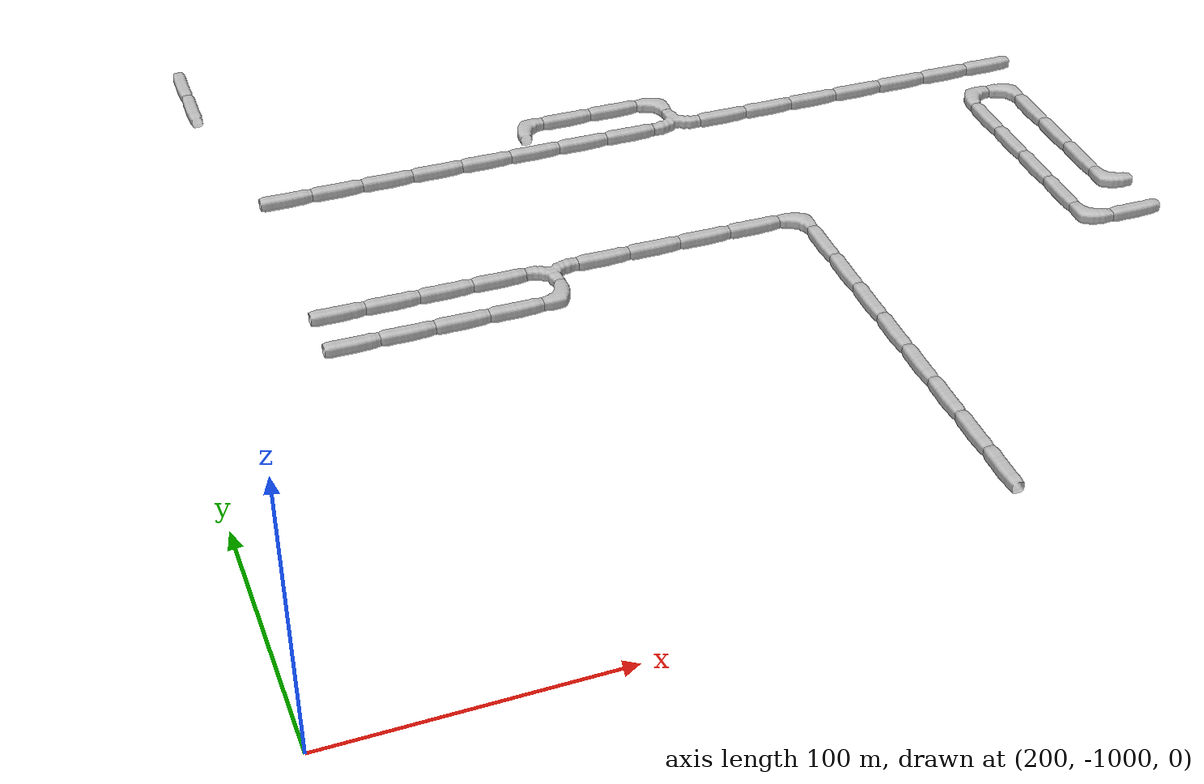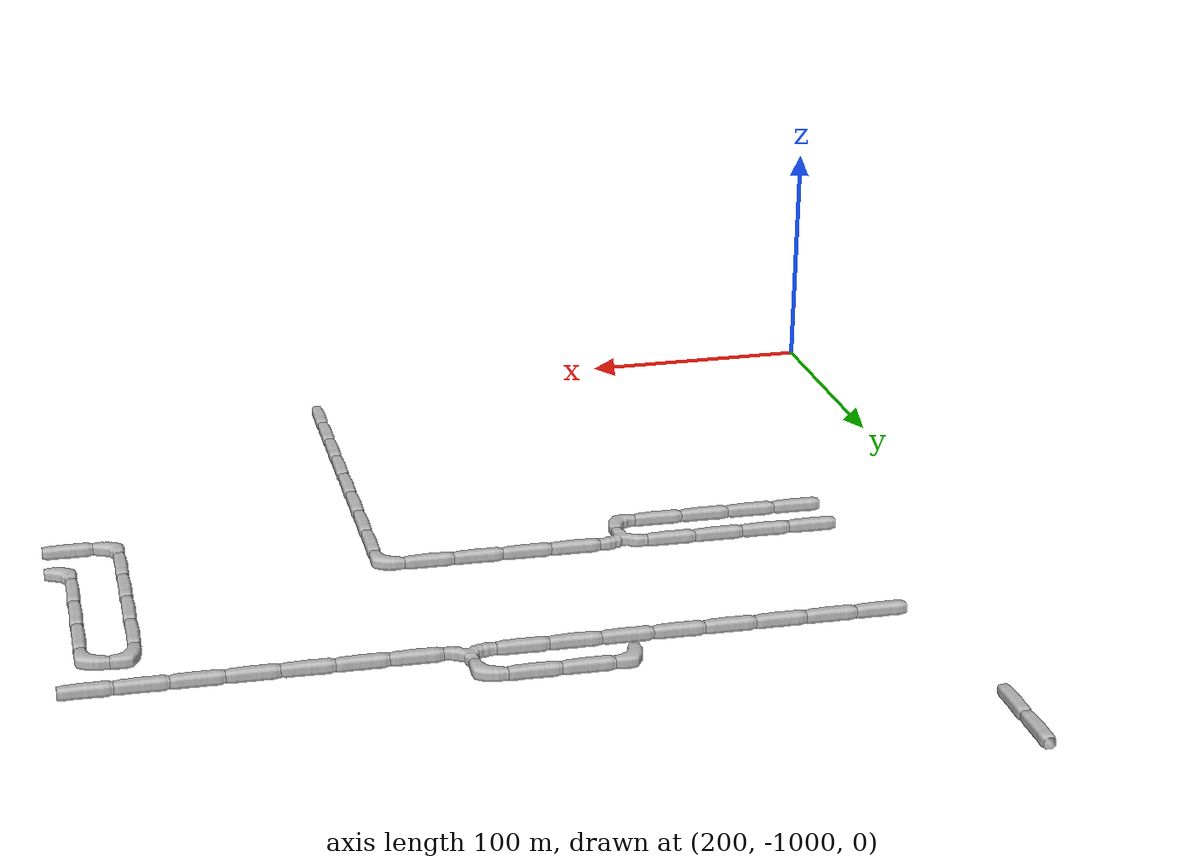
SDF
<sdf version="1.6">
 <world name="cave_32000_0">
  <include>
   <static>true</static>
   <name>cave_13_-40</name>
   <pose>260 -800 0 0 0 1.5707963267948966</pose>
   <uri>model://cave_straight_20m</uri>
  </include>
  <include>
   <static>true</static>
   <name>cave_14_-40</name>
   <pose>280 -800 0 0 0 1.5707963267948966</pose>
   <uri>model://cave_straight_20m</uri>
  </include>
  <include>
   <static>true</static>
   <name>cave_15_-40</name>
   <pose>300 -800 0 0 0 1.5707963267948966</pose>
   <uri>model://cave_straight_20m</uri>
  </include>
  <include>
   <static>true</static>
   <name>cave_16_-40</name>
   <pose>320 -800 0 0 0 1.5707963267948966</pose>
   <uri>model://cave_straight_20m</uri>
  </include>
  <include>
   <static>true</static>
   <name>cave_17_-40</name>
   <pose>340 -800 0 0 0 3.141592653589793</pose>
   <uri>model://cave_3way_20m</uri>
  </include>
  <include>
   <static>true</static>
   <name>cave_18_-40</name>
   <pose>360 -800 0 0 0 1.5707963267948966</pose>
   <uri>model://cave_straight_20m</uri>
  </include>
  <include>
   <static>true</static>
   <name>cave_19_-40</name>
   <pose>380 -800 0 0 0 1.5707963267948966</pose>
   <uri>model://cave_straight_20m</uri>
  </include>
  <include>
   <static>true</static>
   <name>cave_20_-40</name>
   <pose>400 -800 0 0 0 1.5707963267948966</pose>
   <uri>model://cave_straight_20m</uri>
  </include>
  <include>
   <static>true</static>
   <name>cave_21_-40</name>
   <pose>420 -800 0 0 0 1.5707963267948966</pose>
   <uri>model://cave_straight_20m</uri>
  </include>
  <include>
   <static>true</static>
   <name>cave_22_-40</name>
   <pose>440 -800 0 0 0 3.141592653589793</pose>
   <uri>model://cave_L_20m</uri>
  </include>
  <include>
   <static>true</static>
   <name>cave_22_-41</name>
   <pose>440 -820 0 0 0 0.0</pose>
   <uri>model://cave_straight_20m</uri>
  </include>
  <include>
   <static>true</static>
   <name>cave_22_-42</name>
   <pose>440 -840 0 0 0 0.0</pose>
   <uri>model://cave_straight_20m</uri>
  </include>
  <include>
   <static>true</static>
   <name>cave_22_-43</name>
   <pose>440 -860 0 0 0 0.0</pose>
   <uri>model://cave_straight_20m</uri>
  </include>
  <include>
   <static>true</static>
   <name>cave_22_-44</name>
   <pose>440 -880 0 0 0 0.0</pose>
   <uri>model://cave_straight_20m</uri>
  </include>
  <include>
   <static>true</static>
   <name>cave_22_-45</name>
   <pose>440 -900 0 0 0 0.0</pose>
   <uri>model://cave_straight_20m</uri>
  </include>
  <include>
   <static>true</static>
   <name>cave_22_-46</name>
   <pose>440 -920 0 0 0 0.0</pose>
   <uri>model://cave_straight_20m</uri>
  </include>
  <include>
   <static>true</static>
   <name>cave_22_-47</name>
   <pose>440 -940 0 0 0 0.0</pose>
   <uri>model://cave_straight_20m</uri>
  </include>
  <include>
   <static>true</static>
   <name>cave_22_-48</name>
   <pose>440 -960 0 0 0 0.0</pose>
   <uri>model://cave_straight_20m</uri>
  </include>
  <include>
   <static>true</static>
   <name>cave_28_-36</name>
   <pose>560 -720 0 0 0 1.5707963267948966</pose>
   <uri>model://cave_straight_20m</uri>
  </include>
  <include>
   <static>true</static>
   <name>cave_27_-36</name>
   <pose>540 -720 0 0 0 1.5707963267948966</pose>
   <uri>model://cave_straight_20m</uri>
  </include>
  <include>
   <static>true</static>
   <name>cave_26_-36</name>
   <pose>520 -720 0 0 0 1.5707963267948966</pose>
   <uri>model://cave_straight_20m</uri>
  </include>
  <include>
   <static>true</static>
   <name>cave_25_-36</name>
   <pose>500 -720 0 0 0 1.5707963267948966</pose>
   <uri>model://cave_straight_20m</uri>
  </include>
  <include>
   <static>true</static>
   <name>cave_24_-36</name>
   <pose>480 -720 0 0 0 1.5707963267948966</pose>
   <uri>model://cave_straight_20m</uri>
  </include>
  <include>
   <static>true</static>
   <name>cave_23_-36</name>
   <pose>460 -720 0 0 0 1.5707963267948966</pose>
   <uri>model://cave_straight_20m</uri>
  </include>
  <include>
   <static>true</static>
   <name>cave_22_-36</name>
   <pose>440 -720 0 0 0 1.5707963267948966</pose>
   <uri>model://cave_straight_20m</uri>
  </include>
  <include>
   <static>true</static>
   <name>cave_21_-36</name>
   <pose>420 -720 0 0 0 0.0</pose>
   <uri>model://cave_3way_20m</uri>
  </include>
  <include>
   <static>true</static>
   <name>cave_20_-36</name>
   <pose>400 -720 0 0 0 1.5707963267948966</pose>
   <uri>model://cave_straight_20m</uri>
  </include>
  <include>
   <static>true</static>
   <name>cave_19_-36</name>
   <pose>380 -720 0 0 0 1.5707963267948966</pose>
   <uri>model://cave_straight_20m</uri>
  </include>
  <include>
   <static>true</static>
   <name>cave_18_-36</name>
   <pose>360 -720 0 0 0 1.5707963267948966</pose>
   <uri>model://cave_straight_20m</uri>
  </include>
  <include>
   <static>true</static>
   <name>cave_17_-36</name>
   <pose>340 -720 0 0 0 1.5707963267948966</pose>
   <uri>model://cave_straight_20m</uri>
  </include>
  <include>
   <static>true</static>
   <name>cave_16_-36</name>
   <pose>320 -720 0 0 0 1.5707963267948966</pose>
   <uri>model://cave_straight_20m</uri>
  </include>
  <include>
   <static>true</static>
   <name>cave_15_-36</name>
   <pose>300 -720 0 0 0 1.5707963267948966</pose>
   <uri>model://cave_straight_20m</uri>
  </include>
  <include>
   <static>true</static>
   <name>cave_14_-36</name>
   <pose>280 -720 0 0 0 1.5707963267948966</pose>
   <uri>model://cave_straight_20m</uri>
  </include>
  <include>
   <static>true</static>
   <name>cave_13_-36</name>
   <pose>260 -720 0 0 0 1.5707963267948966</pose>
   <uri>model://cave_straight_20m</uri>
  </include>
  <include>
   <static>true</static>
   <name>cave_12_-32</name>
   <pose>240 -640 0 0 0 0.0</pose>
   <uri>model://cave_straight_20m</uri>
  </include>
  <include>
   <static>true</static>
   <name>cave_12_-31</name>
   <pose>240 -620 0 0 0 0.0</pose>
   <uri>model://cave_straight_20m</uri>
  </include>
  <include>
   <static>true</static>
   <name>cave_21_-35</name>
   <pose>420 -700 0 0 0 3.141592653589793</pose>
   <uri>model://cave_L_20m</uri>
  </include>
  <include>
   <static>true</static>
   <name>cave_20_-35</name>
   <pose>400 -700 0 0 0 1.5707963267948966</pose>
   <uri>model://cave_straight_20m</uri>
  </include>
  <include>
   <static>true</static>
   <name>cave_19_-35</name>
   <pose>380 -700 0 0 0 1.5707963267948966</pose>
   <uri>model://cave_straight_20m</uri>
  </include>
  <include>
   <static>true</static>
   <name>cave_18_-35</name>
   <pose>360 -700 0 0 0 -1.5707963267948966</pose>
   <uri>model://cave_L_20m</uri>
  </include>
  <include>
   <static>true</static>
   <name>cave_28_-41</name>
   <pose>560 -820 0 0 0 0.0</pose>
   <uri>model://cave_L_20m</uri>
  </include>
  <include>
   <static>true</static>
   <name>cave_28_-40</name>
   <pose>560 -800 0 0 0 0.0</pose>
   <uri>model://cave_straight_20m</uri>
  </include>
  <include>
   <static>true</static>
   <name>cave_28_-39</name>
   <pose>560 -780 0 0 0 0.0</pose>
   <uri>model://cave_straight_20m</uri>
  </include>
  <include>
   <static>true</static>
   <name>cave_28_-38</name>
   <pose>560 -760 0 0 0 0.0</pose>
   <uri>model://cave_straight_20m</uri>
  </include>
  <include>
   <static>true</static>
   <name>cave_28_-37</name>
   <pose>560 -740 0 0 0 3.141592653589793</pose>
   <uri>model://cave_L_20m</uri>
  </include>
  <include>
   <static>true</static>
   <name>cave_27_-37</name>
   <pose>540 -740 0 0 0 -1.5707963267948966</pose>
   <uri>model://cave_L_20m</uri>
  </include>
  <include>
   <static>true</static>
   <name>cave_27_-38</name>
   <pose>540 -760 0 0 0 0.0</pose>
   <uri>model://cave_straight_20m</uri>
  </include>
  <include>
   <static>true</static>
   <name>cave_27_-39</name>
   <pose>540 -780 0 0 0 0.0</pose>
   <uri>model://cave_straight_20m</uri>
  </include>
  <include>
   <static>true</static>
   <name>cave_27_-40</name>
   <pose>540 -800 0 0 0 0.0</pose>
   <uri>model://cave_straight_20m</uri>
  </include>
  <include>
   <static>true</static>
   <name>cave_27_-41</name>
   <pose>540 -820 0 0 0 0.0</pose>
   <uri>model://cave_straight_20m</uri>
  </include>
  <include>
   <static>true</static>
   <name>cave_27_-42</name>
   <pose>540 -840 0 0 0 0.0</pose>
   <uri>model://cave_L_20m</uri>
  </include>
  <include>
   <static>true</static>
   <name>cave_28_-42</name>
   <pose>560 -840 0 0 0 1.5707963267948966</pose>
   <uri>model://cave_straight_20m</uri>
  </include>
  <include>
   <static>true</static>
   <name>cave_17_-41</name>
   <pose>340 -820 0 0 0 1.5707963267948966</pose>
   <uri>model://cave_L_20m</uri>
  </include>
  <include>
   <static>true</static>
   <name>cave_16_-41</name>
   <pose>320 -820 0 0 0 1.5707963267948966</pose>
   <uri>model://cave_straight_20m</uri>
  </include>
  <include>
   <static>true</static>
   <name>cave_15_-41</name>
   <pose>300 -820 0 0 0 1.5707963267948966</pose>
   <uri>model://cave_straight_20m</uri>
  </include>
  <include>
   <static>true</static>
   <name>cave_14_-41</name>
   <pose>280 -820 0 0 0 1.5707963267948966</pose>
   <uri>model://cave_straight_20m</uri>
  </include>
  <include>
   <static>true</static>
   <name>cave_13_-41</name>
   <pose>260 -820 0 0 0 1.5707963267948966</pose>
   <uri>model://cave_straight_20m</uri>
  </include>
 </world>
</sdf>
